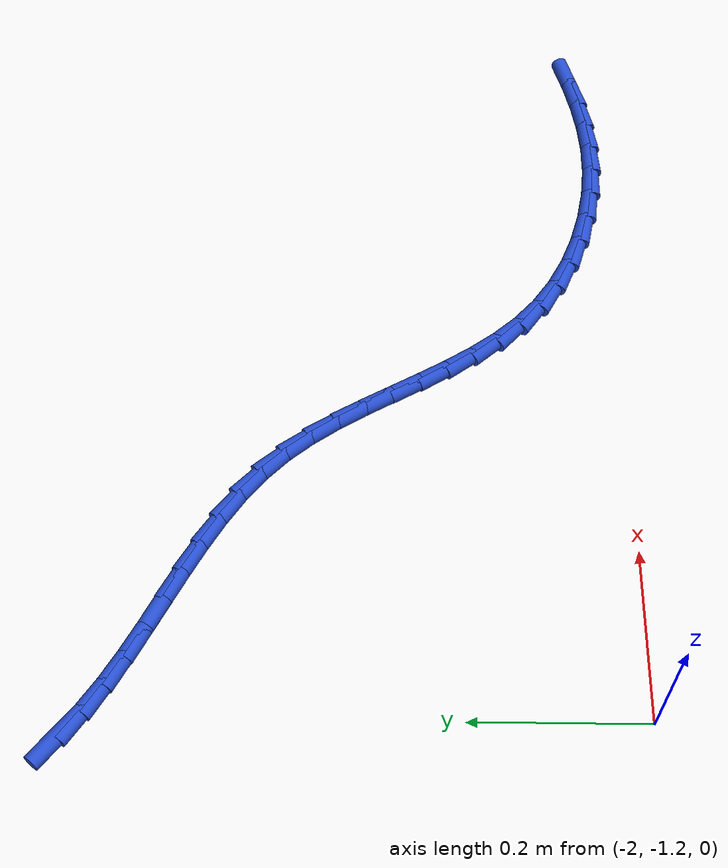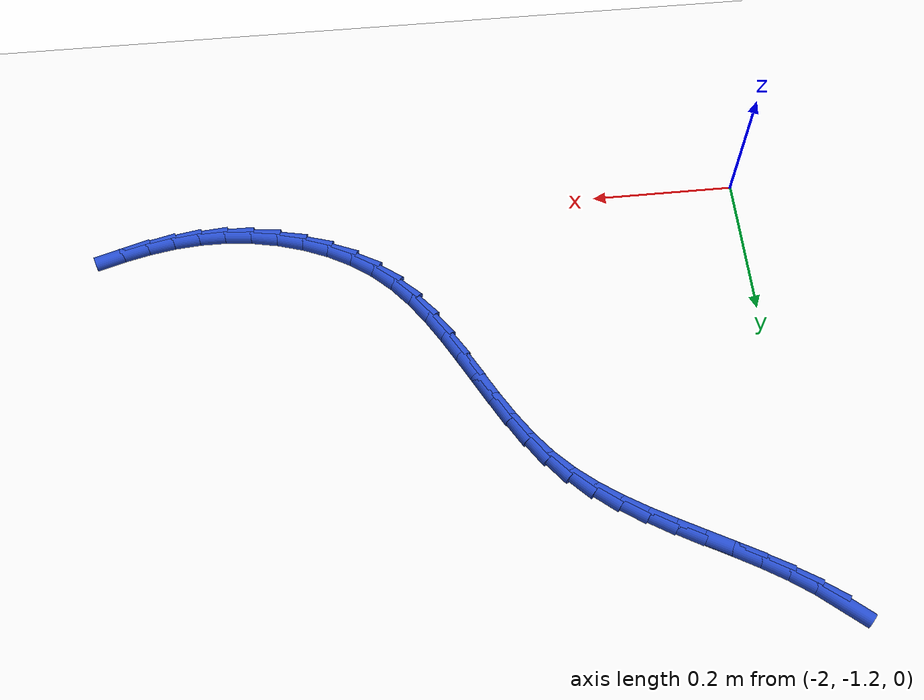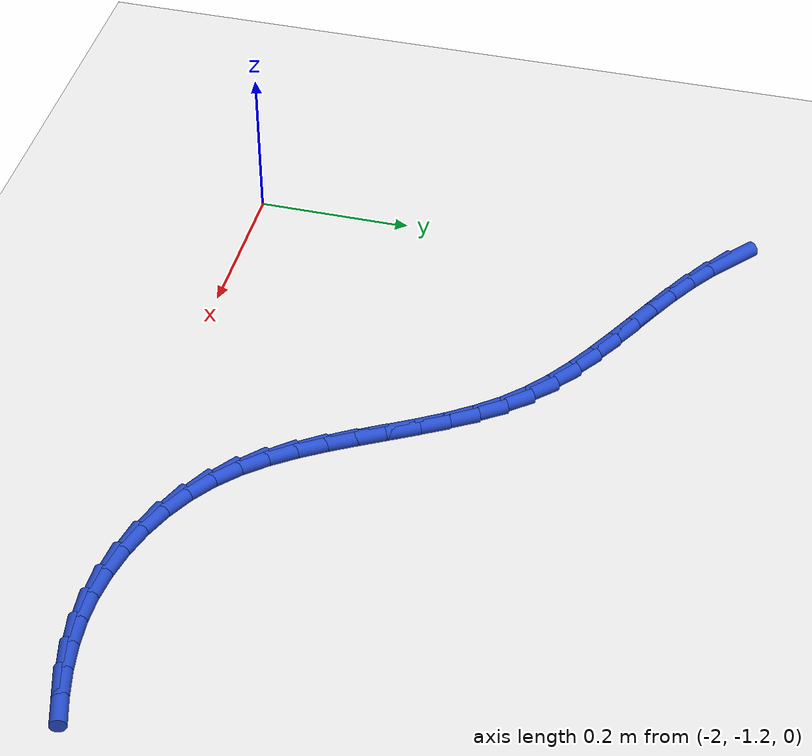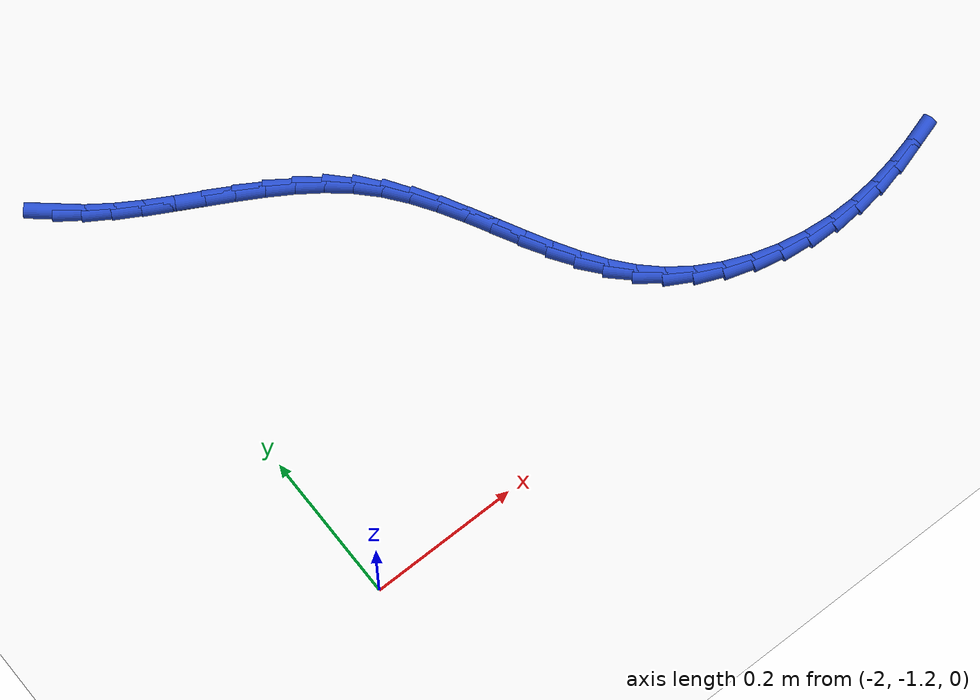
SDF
<sdf version="1.6">
 <world name="default">
  <model name="ground_plane">
   <static>1</static>
   <link name="link">
    <collision name="collision">
     <geometry><plane><normal>0 0 1</normal><size>100 100</size></plane></geometry>
     <surface><friction><ode><mu>100</mu><mu2>50</mu2></ode></friction></surface>
    </collision>
    <visual name="visual">
     <cast_shadows>0</cast_shadows>
     <geometry><plane><normal>0 0 1</normal><size>100 100</size></plane></geometry>
     <material>
      <script><uri>file://media/materials/scripts/gazebo.material</uri><name>Gazebo/WhiteGlow</name></script>
     </material>
    </visual>
   </link>
  </model>
  <model name="line">
   <link name="link_111">
    <pose>-2.0216170061827223 -0.5733257383337018 0.01 0 1.57 -0.7013280524311335</pose>
    <collision name="collision">
     <geometry><cylinder><radius>0.01</radius><length>0.08</length></cylinder></geometry>
    </collision>
    <visual name="visual">
     <material>
      <script><name>Gazebo/Blue</name><uri>file://media/materials/scripts/gazebo.material</uri></script>
     </material>
     <geometry><cylinder><radius>0.01</radius><length>0.08</length></cylinder></geometry>
    </visual>
   </link>
   <link name="link_112">
    <pose>-1.994653264256526 -0.5960982675735056 0.01 0 1.57 -0.6165708674082271</pose>
    <collision name="collision">
     <geometry><cylinder><radius>0.01</radius><length>0.08</length></cylinder></geometry>
    </collision>
    <visual name="visual">
     <material>
      <script><name>Gazebo/Blue</name><uri>file://media/materials/scripts/gazebo.material</uri></script>
     </material>
     <geometry><cylinder><radius>0.01</radius><length>0.08</length></cylinder></geometry>
    </visual>
   </link>
   <link name="link_113">
    <pose>-1.9652257072373913 -0.6169548951099136 0.01 0 1.57 -0.5555771139031983</pose>
    <collision name="collision">
     <geometry><cylinder><radius>0.01</radius><length>0.08</length></cylinder></geometry>
    </collision>
    <visual name="visual">
     <material>
      <script><name>Gazebo/Blue</name><uri>file://media/materials/scripts/gazebo.material</uri></script>
     </material>
     <geometry><cylinder><radius>0.01</radius><length>0.08</length></cylinder></geometry>
    </visual>
   </link>
   <link name="link_114">
    <pose>-1.933915453953865 -0.6363924619680704 0.01 0 1.57 -0.5163681867355127</pose>
    <collision name="collision">
     <geometry><cylinder><radius>0.01</radius><length>0.08</length></cylinder></geometry>
    </collision>
    <visual name="visual">
     <material>
      <script><name>Gazebo/Blue</name><uri>file://media/materials/scripts/gazebo.material</uri></script>
     </material>
     <geometry><cylinder><radius>0.01</radius><length>0.08</length></cylinder></geometry>
    </visual>
   </link>
   <link name="link_115">
    <pose>-1.9013036232344918 -0.6549078091731213 0.01 0 1.57 -0.49723373621035394</pose>
    <collision name="collision">
     <geometry><cylinder><radius>0.01</radius><length>0.08</length></cylinder></geometry>
    </collision>
    <visual name="visual">
     <material>
      <script><name>Gazebo/Blue</name><uri>file://media/materials/scripts/gazebo.material</uri></script>
     </material>
     <geometry><cylinder><radius>0.01</radius><length>0.08</length></cylinder></geometry>
    </visual>
   </link>
   <link name="link_116">
    <pose>-1.8679713339078163 -0.6729977777502114 0.01 0 1.57 -0.49713773534570305</pose>
    <collision name="collision">
     <geometry><cylinder><radius>0.01</radius><length>0.08</length></cylinder></geometry>
    </collision>
    <visual name="visual">
     <material>
      <script><name>Gazebo/Blue</name><uri>file://media/materials/scripts/gazebo.material</uri></script>
     </material>
     <geometry><cylinder><radius>0.01</radius><length>0.08</length></cylinder></geometry>
    </visual>
   </link>
   <link name="link_117">
    <pose>-1.8344997048023837 -0.6911592087244858 0.01 0 1.57 -0.5158427374302237</pose>
    <collision name="collision">
     <geometry><cylinder><radius>0.01</radius><length>0.08</length></cylinder></geometry>
    </collision>
    <visual name="visual">
     <material>
      <script><name>Gazebo/Blue</name><uri>file://media/materials/scripts/gazebo.material</uri></script>
     </material>
     <geometry><cylinder><radius>0.01</radius><length>0.08</length></cylinder></geometry>
    </visual>
   </link>
   <link name="link_118">
    <pose>-1.8014698547467394 -0.7098889431210892 0.01 0 1.57 -0.5538793828444929</pose>
    <collision name="collision">
     <geometry><cylinder><radius>0.01</radius><length>0.08</length></cylinder></geometry>
    </collision>
    <visual name="visual">
     <material>
      <script><name>Gazebo/Blue</name><uri>file://media/materials/scripts/gazebo.material</uri></script>
     </material>
     <geometry><cylinder><radius>0.01</radius><length>0.08</length></cylinder></geometry>
    </visual>
   </link>
   <link name="link_119">
    <pose>-1.7694629025694268 -0.7296838219651673 0.01 0 1.57 -0.6123754660231259</pose>
    <collision name="collision">
     <geometry><cylinder><radius>0.01</radius><length>0.08</length></cylinder></geometry>
    </collision>
    <visual name="visual">
     <material>
      <script><name>Gazebo/Blue</name><uri>file://media/materials/scripts/gazebo.material</uri></script>
     </material>
     <geometry><cylinder><radius>0.01</radius><length>0.08</length></cylinder></geometry>
    </visual>
   </link>
   <link name="link_120">
    <pose>-1.7390599670989912 -0.7510406862818653 0.01 0 1.57 -0.6926611652939462</pose>
    <collision name="collision">
     <geometry><cylinder><radius>0.01</radius><length>0.08</length></cylinder></geometry>
    </collision>
    <visual name="visual">
     <material>
      <script><name>Gazebo/Blue</name><uri>file://media/materials/scripts/gazebo.material</uri></script>
     </material>
     <geometry><cylinder><radius>0.01</radius><length>0.08</length></cylinder></geometry>
    </visual>
   </link>
   <link name="link_121">
    <pose>-1.7108421671639777 -0.774456377096328 0.01 0 1.57 -0.7949781180289436</pose>
    <collision name="collision">
     <geometry><cylinder><radius>0.01</radius><length>0.08</length></cylinder></geometry>
    </collision>
    <visual name="visual">
     <material>
      <script><name>Gazebo/Blue</name><uri>file://media/materials/scripts/gazebo.material</uri></script>
     </material>
     <geometry><cylinder><radius>0.01</radius><length>0.08</length></cylinder></geometry>
    </visual>
   </link>
   <link name="link_122">
    <pose>-1.685376300176958 -0.8004149025008322 0.01 0 1.57 -0.8992730828478962</pose>
    <collision name="collision">
     <geometry><cylinder><radius>0.01</radius><length>0.08</length></cylinder></geometry>
    </collision>
    <visual name="visual">
     <material>
      <script><name>Gazebo/Blue</name><uri>file://media/materials/scripts/gazebo.material</uri></script>
     </material>
     <geometry><cylinder><radius>0.01</radius><length>0.08</length></cylinder></geometry>
    </visual>
   </link>
   <link name="link_123">
    <pose>-1.6627101665976445 -0.8289352151024113 0.01 0 1.57 -0.979898381688615</pose>
    <collision name="collision">
     <geometry><cylinder><radius>0.01</radius><length>0.08</length></cylinder></geometry>
    </collision>
    <visual name="visual">
     <material>
      <script><name>Gazebo/Blue</name><uri>file://media/materials/scripts/gazebo.material</uri></script>
     </material>
     <geometry><cylinder><radius>0.01</radius><length>0.08</length></cylinder></geometry>
    </visual>
   </link>
   <link name="link_124">
    <pose>-1.6422384310443054 -0.8594510147354171 0.01 0 1.57 -1.035470406313866</pose>
    <collision name="collision">
     <geometry><cylinder><radius>0.01</radius><length>0.08</length></cylinder></geometry>
    </collision>
    <visual name="visual">
     <material>
      <script><name>Gazebo/Blue</name><uri>file://media/materials/scripts/gazebo.material</uri></script>
     </material>
     <geometry><cylinder><radius>0.01</radius><length>0.08</length></cylinder></geometry>
    </visual>
   </link>
   <link name="link_125">
    <pose>-1.6233141637109498 -0.8913587298879045 0.01 0 1.57 -1.0669933124651627</pose>
    <collision name="collision">
     <geometry><cylinder><radius>0.01</radius><length>0.08</length></cylinder></geometry>
    </collision>
    <visual name="visual">
     <material>
      <script><name>Gazebo/Blue</name><uri>file://media/materials/scripts/gazebo.material</uri></script>
     </material>
     <geometry><cylinder><radius>0.01</radius><length>0.08</length></cylinder></geometry>
    </visual>
   </link>
   <link name="link_126">
    <pose>-1.605290434791586 -0.9240547890479297 0.01 0 1.57 -1.0753223773052143</pose>
    <collision name="collision">
     <geometry><cylinder><radius>0.01</radius><length>0.08</length></cylinder></geometry>
    </collision>
    <visual name="visual">
     <material>
      <script><name>Gazebo/Blue</name><uri>file://media/materials/scripts/gazebo.material</uri></script>
     </material>
     <geometry><cylinder><radius>0.01</radius><length>0.08</length></cylinder></geometry>
    </visual>
   </link>
   <link name="link_127">
    <pose>-1.587520314480223 -0.9569356207035469 0.01 0 1.57 -1.0606668012821607</pose>
    <collision name="collision">
     <geometry><cylinder><radius>0.01</radius><length>0.08</length></cylinder></geometry>
    </collision>
    <visual name="visual">
     <material>
      <script><name>Gazebo/Blue</name><uri>file://media/materials/scripts/gazebo.material</uri></script>
     </material>
     <geometry><cylinder><radius>0.01</radius><length>0.08</length></cylinder></geometry>
    </visual>
   </link>
   <link name="link_128">
    <pose>-1.5693568729708693 -0.9893976533428113 0.01 0 1.57 -1.0224654368410304</pose>
    <collision name="collision">
     <geometry><cylinder><radius>0.01</radius><length>0.08</length></cylinder></geometry>
    </collision>
    <visual name="visual">
     <material>
      <script><name>Gazebo/Blue</name><uri>file://media/materials/scripts/gazebo.material</uri></script>
     </material>
     <geometry><cylinder><radius>0.01</radius><length>0.08</length></cylinder></geometry>
    </visual>
   </link>
   <link name="link_129">
    <pose>-1.5501531804575335 -1.020837315453777 0.01 0 1.57 -0.959591727179184</pose>
    <collision name="collision">
     <geometry><cylinder><radius>0.01</radius><length>0.08</length></cylinder></geometry>
    </collision>
    <visual name="visual">
     <material>
      <script><name>Gazebo/Blue</name><uri>file://media/materials/scripts/gazebo.material</uri></script>
     </material>
     <geometry><cylinder><radius>0.01</radius><length>0.08</length></cylinder></geometry>
    </visual>
   </link>
   <link name="link_130">
    <pose>-1.5292623071342246 -1.0506510355245002 0.01 0 1.57 -0.870984521580733</pose>
    <collision name="collision">
     <geometry><cylinder><radius>0.01</radius><length>0.08</length></cylinder></geometry>
    </collision>
    <visual name="visual">
     <material>
      <script><name>Gazebo/Blue</name><uri>file://media/materials/scripts/gazebo.material</uri></script>
     </material>
     <geometry><cylinder><radius>0.01</radius><length>0.08</length></cylinder></geometry>
    </visual>
   </link>
   <link name="link_131">
    <pose>-1.5060373231949509 -1.078235242043035 0.01 0 1.57 -0.756859466479762</pose>
    <collision name="collision">
     <geometry><cylinder><radius>0.01</radius><length>0.08</length></cylinder></geometry>
    </collision>
    <visual name="visual">
     <material>
      <script><name>Gazebo/Blue</name><uri>file://media/materials/scripts/gazebo.material</uri></script>
     </material>
     <geometry><cylinder><radius>0.01</radius><length>0.08</length></cylinder></geometry>
    </visual>
   </link>
   <link name="link_132">
    <pose>-1.4798314822985805 -1.1029864405013163 0.01 0 1.57 -0.627601769653279</pose>
    <collision name="collision">
     <geometry><cylinder><radius>0.01</radius><length>0.08</length></cylinder></geometry>
    </collision>
    <visual name="visual">
     <material>
      <script><name>Gazebo/Blue</name><uri>file://media/materials/scripts/gazebo.material</uri></script>
     </material>
     <geometry><cylinder><radius>0.01</radius><length>0.08</length></cylinder></geometry>
    </visual>
   </link>
   <link name="link_133">
    <pose>-1.450284385657945 -1.1244213222026613 0.01 0 1.57 -0.5072783355760788</pose>
    <collision name="collision">
     <geometry><cylinder><radius>0.01</radius><length>0.08</length></cylinder></geometry>
    </collision>
    <visual name="visual">
     <material>
      <script><name>Gazebo/Blue</name><uri>file://media/materials/scripts/gazebo.material</uri></script>
     </material>
     <geometry><cylinder><radius>0.01</radius><length>0.08</length></cylinder></geometry>
    </visual>
   </link>
   <link name="link_134">
    <pose>-1.417900922085977 -1.142419757010334 0.01 0 1.57 -0.39758600479618467</pose>
    <collision name="collision">
     <geometry><cylinder><radius>0.01</radius><length>0.08</length></cylinder></geometry>
    </collision>
    <visual name="visual">
     <material>
      <script><name>Gazebo/Blue</name><uri>file://media/materials/scripts/gazebo.material</uri></script>
     </material>
     <geometry><cylinder><radius>0.01</radius><length>0.08</length></cylinder></geometry>
    </visual>
   </link>
   <link name="link_135">
    <pose>-1.3833487859899005 -1.1569299475607506 0.01 0 1.57 -0.2953764074592756</pose>
    <collision name="collision">
     <geometry><cylinder><radius>0.01</radius><length>0.08</length></cylinder></geometry>
    </collision>
    <visual name="visual">
     <material>
      <script><name>Gazebo/Blue</name><uri>file://media/materials/scripts/gazebo.material</uri></script>
     </material>
     <geometry><cylinder><radius>0.01</radius><length>0.08</length></cylinder></geometry>
    </visual>
   </link>
   <link name="link_136">
    <pose>-1.3472956717769413 -1.1679000964903263 0.01 0 1.57 -0.19742241869506064</pose>
    <collision name="collision">
     <geometry><cylinder><radius>0.01</radius><length>0.08</length></cylinder></geometry>
    </collision>
    <visual name="visual">
     <material>
      <script><name>Gazebo/Blue</name><uri>file://media/materials/scripts/gazebo.material</uri></script>
     </material>
     <geometry><cylinder><radius>0.01</radius><length>0.08</length></cylinder></geometry>
    </visual>
   </link>
   <link name="link_137">
    <pose>-1.3104092738543252 -1.1752784064354778 0.01 0 1.57 -0.10045621456279517</pose>
    <collision name="collision">
     <geometry><cylinder><radius>0.01</radius><length>0.08</length></cylinder></geometry>
    </collision>
    <visual name="visual">
     <material>
      <script><name>Gazebo/Blue</name><uri>file://media/materials/scripts/gazebo.material</uri></script>
     </material>
     <geometry><cylinder><radius>0.01</radius><length>0.08</length></cylinder></geometry>
    </visual>
   </link>
   <link name="link_138">
    <pose>-1.2733572866292777 -1.179013080032621 0.01 0 1.57 -0.00202444450884752</pose>
    <collision name="collision">
     <geometry><cylinder><radius>0.01</radius><length>0.08</length></cylinder></geometry>
    </collision>
    <visual name="visual">
     <material>
      <script><name>Gazebo/Blue</name><uri>file://media/materials/scripts/gazebo.material</uri></script>
     </material>
     <geometry><cylinder><radius>0.01</radius><length>0.08</length></cylinder></geometry>
    </visual>
   </link>
   <link name="link_139">
    <pose>-1.2367544591340291 -1.1790871805269827 0.01 0 1.57 0.09130203849035991</pose>
    <collision name="collision">
     <geometry><cylinder><radius>0.01</radius><length>0.08</length></cylinder></geometry>
    </collision>
    <visual name="visual">
     <material>
      <script><name>Gazebo/Blue</name><uri>file://media/materials/scripts/gazebo.material</uri></script>
     </material>
     <geometry><cylinder><radius>0.01</radius><length>0.08</length></cylinder></geometry>
    </visual>
   </link>
   <link name="link_140">
    <pose>-1.2007494132087533 -1.175790681402883 0.01 0 1.57 0.17338082879296893</pose>
    <collision name="collision">
     <geometry><cylinder><radius>0.01</radius><length>0.08</length></cylinder></geometry>
    </collision>
    <visual name="visual">
     <material>
      <script><name>Gazebo/Blue</name><uri>file://media/materials/scripts/gazebo.material</uri></script>
     </material>
     <geometry><cylinder><radius>0.01</radius><length>0.08</length></cylinder></geometry>
    </visual>
   </link>
   <link name="link_141">
    <pose>-1.1652484967836119 -1.169573075573918 0.01 0 1.57 0.2426903904130521</pose>
    <collision name="collision">
     <geometry><cylinder><radius>0.01</radius><length>0.08</length></cylinder></geometry>
    </collision>
    <visual name="visual">
     <material>
      <script><name>Gazebo/Blue</name><uri>file://media/materials/scripts/gazebo.material</uri></script>
     </material>
     <geometry><cylinder><radius>0.01</radius><length>0.08</length></cylinder></geometry>
    </visual>
   </link>
   <link name="link_142">
    <pose>-1.1301559868447384 -1.1608852195169737 0.01 0 1.57 0.2986503390070715</pose>
    <collision name="collision">
     <geometry><cylinder><radius>0.01</radius><length>0.08</length></cylinder></geometry>
    </collision>
    <visual name="visual">
     <material>
      <script><name>Gazebo/Blue</name><uri>file://media/materials/scripts/gazebo.material</uri></script>
     </material>
     <geometry><cylinder><radius>0.01</radius><length>0.08</length></cylinder></geometry>
    </visual>
   </link>
  </model>
 </world>
</sdf>
